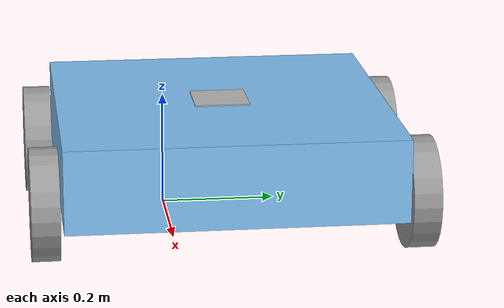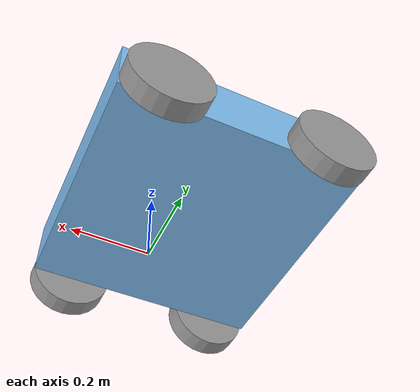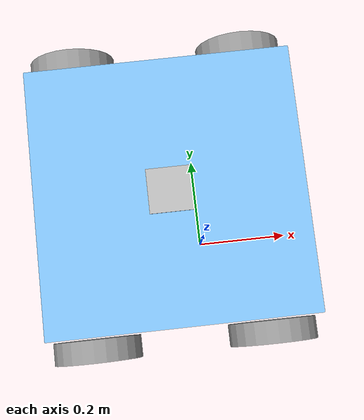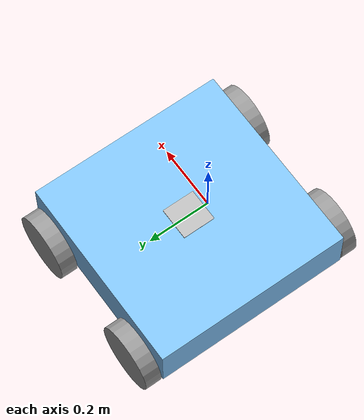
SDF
<?xml version='1.0'?>
<sdf version='1.6'>
  <model name='moving_platform'>
    <link name='base_link'>
      <inertial>
        <mass>5</mass>
        <inertia>
          <ixx>0.159375</ixx>
          <ixy>0</ixy>
          <ixz>0</ixz>
          <iyy>0.159375</iyy>
          <iyz>0</iyz>
          <izz>0.3</izz>
        </inertia>
        <pose frame=''>0 0 0 0 -0 0</pose>
      </inertial>
      <pose frame=''>-0.06079 0.110542 0.097222 0 -0 0</pose>
      <gravity>1</gravity>
      <self_collide>0</self_collide>
      <kinematic>0</kinematic>
      <enable_wind>0</enable_wind>
      <visual name='visual'>
        <pose frame=''>0 0 0 0 -0 0</pose>
        <geometry>
          <box>
            <size>0.6 0.6 0.15</size>
          </box>
        </geometry>
        <material>
          <lighting>1</lighting>
          <script>
            <uri>file://media/materials/scripts/gazebo.material</uri>
            <name>Gazebo/SkyBlue</name>
          </script>
          <shader type='pixel'>
            <normal_map>__default__</normal_map>
          </shader>
          <ambient>0.3 0.3 0.3 1</ambient>
          <diffuse>0.7 0.7 0.7 1</diffuse>
          <specular>0.01 0.01 0.01 1</specular>
          <emissive>0 0 0 1</emissive>
        </material>
        <transparency>0</transparency>
        <cast_shadows>1</cast_shadows>
      </visual>
      <collision name='collision'>
        <laser_retro>0</laser_retro>
        <max_contacts>10</max_contacts>
        <pose frame=''>0 0 0 0 -0 0</pose>
        <geometry>
          <box>
            <size>0.6 0.6 0.15</size>
          </box>
        </geometry>
        <surface>
          <friction>
            <ode>
              <mu>1</mu>
              <mu2>1</mu2>
              <fdir1>0 0 0</fdir1>
              <slip1>0</slip1>
              <slip2>0</slip2>
            </ode>
            <torsional>
              <coefficient>1</coefficient>
              <patch_radius>0</patch_radius>
              <surface_radius>0</surface_radius>
              <use_patch_radius>1</use_patch_radius>
              <ode>
                <slip>0</slip>
              </ode>
            </torsional>
          </friction>
          <bounce>
            <restitution_coefficient>0</restitution_coefficient>
            <threshold>1e+06</threshold>
          </bounce>
          <contact>
            <collide_without_contact>0</collide_without_contact>
            <collide_without_contact_bitmask>1</collide_without_contact_bitmask>
            <collide_bitmask>1</collide_bitmask>
            <ode>
              <soft_cfm>0</soft_cfm>
              <soft_erp>0.2</soft_erp>
              <kp>1e+13</kp>
              <kd>1</kd>
              <max_vel>0.01</max_vel>
              <min_depth>0</min_depth>
            </ode>
            <bullet>
              <split_impulse>1</split_impulse>
              <split_impulse_penetration_threshold>-0.01</split_impulse_penetration_threshold>
              <soft_cfm>0</soft_cfm>
              <soft_erp>0.2</soft_erp>
              <kp>1e+13</kp>
              <kd>1</kd>
            </bullet>
          </contact>
        </surface>
      </collision>
    </link>
    <link name='left_front_wheel'>
      <inertial>
        <mass>0.15</mass>
        <inertia>
          <ixx>0.00040625</ixx>
          <ixy>0</ixy>
          <ixz>0</ixz>
          <iyy>0.00040625</iyy>
          <iyz>0</iyz>
          <izz>0.00075</izz>
        </inertia>
        <pose frame=''>0 0 0 0 -0 0</pose>
      </inertial>
      <pose frame=''>0.13921 0.440542 0.047222 -1.5708 -0 -0</pose>
      <gravity>1</gravity>
      <self_collide>0</self_collide>
      <kinematic>0</kinematic>
      <enable_wind>0</enable_wind>
      <visual name='visual'>
        <pose frame=''>0 0 0 0 -0 0</pose>
        <geometry>
          <cylinder>
            <radius>0.1</radius>
            <length>0.05</length>
          </cylinder>
        </geometry>
        <material>
          <lighting>1</lighting>
          <script>
            <uri>file://media/materials/scripts/gazebo.material</uri>
            <name>Gazebo/Grey</name>
          </script>
          <shader type='pixel'>
            <normal_map>__default__</normal_map>
          </shader>
          <ambient>0.3 0.3 0.3 1</ambient>
          <diffuse>0.7 0.7 0.7 1</diffuse>
          <specular>0.01 0.01 0.01 1</specular>
          <emissive>0 0 0 1</emissive>
        </material>
        <transparency>0</transparency>
        <cast_shadows>1</cast_shadows>
      </visual>
      <collision name='collision'>
        <laser_retro>0</laser_retro>
        <max_contacts>10</max_contacts>
        <pose frame=''>0 0 0 0 -0 0</pose>
        <geometry>
          <cylinder>
            <radius>0.1</radius>
            <length>0.05</length>
          </cylinder>
        </geometry>
        <surface>
          <friction>
            <ode>
              <mu>1</mu>
              <mu2>1</mu2>
              <fdir1>0 0 0</fdir1>
              <slip1>0</slip1>
              <slip2>0</slip2>
            </ode>
            <torsional>
              <coefficient>1</coefficient>
              <patch_radius>0</patch_radius>
              <surface_radius>0</surface_radius>
              <use_patch_radius>1</use_patch_radius>
              <ode>
                <slip>0</slip>
              </ode>
            </torsional>
          </friction>
          <bounce>
            <restitution_coefficient>0</restitution_coefficient>
            <threshold>1e+06</threshold>
          </bounce>
          <contact>
            <collide_without_contact>0</collide_without_contact>
            <collide_without_contact_bitmask>1</collide_without_contact_bitmask>
            <collide_bitmask>1</collide_bitmask>
            <ode>
              <soft_cfm>0</soft_cfm>
              <soft_erp>0.2</soft_erp>
              <kp>1e+13</kp>
              <kd>1</kd>
              <max_vel>0.01</max_vel>
              <min_depth>0</min_depth>
            </ode>
            <bullet>
              <split_impulse>1</split_impulse>
              <split_impulse_penetration_threshold>-0.01</split_impulse_penetration_threshold>
              <soft_cfm>0</soft_cfm>
              <soft_erp>0.2</soft_erp>
              <kp>1e+13</kp>
              <kd>1</kd>
            </bullet>
          </contact>
        </surface>
      </collision>
    </link>
    <link name='left_rear_wheel'>
      <inertial>
        <mass>0.15</mass>
        <inertia>
          <ixx>0.00040625</ixx>
          <ixy>0</ixy>
          <ixz>0</ixz>
          <iyy>0.00040625</iyy>
          <iyz>0</iyz>
          <izz>0.00075</izz>
        </inertia>
        <pose frame=''>0 0 0 0 -0 0</pose>
      </inertial>
      <pose frame=''>-0.26079 0.440542 0.047222 -1.5708 -0 -0</pose>
      <gravity>1</gravity>
      <self_collide>0</self_collide>
      <kinematic>0</kinematic>
      <enable_wind>0</enable_wind>
      <visual name='visual'>
        <pose frame=''>0 0 0 0 -0 0</pose>
        <geometry>
          <cylinder>
            <radius>0.1</radius>
            <length>0.05</length>
          </cylinder>
        </geometry>
        <material>
          <lighting>1</lighting>
          <script>
            <uri>file://media/materials/scripts/gazebo.material</uri>
            <name>Gazebo/Grey</name>
          </script>
          <shader type='pixel'>
            <normal_map>__default__</normal_map>
          </shader>
          <ambient>0.3 0.3 0.3 1</ambient>
          <diffuse>0.7 0.7 0.7 1</diffuse>
          <specular>0.01 0.01 0.01 1</specular>
          <emissive>0 0 0 1</emissive>
        </material>
        <transparency>0</transparency>
        <cast_shadows>1</cast_shadows>
      </visual>
      <collision name='collision'>
        <laser_retro>0</laser_retro>
        <max_contacts>10</max_contacts>
        <pose frame=''>0 0 0 0 -0 0</pose>
        <geometry>
          <cylinder>
            <radius>0.1</radius>
            <length>0.05</length>
          </cylinder>
        </geometry>
        <surface>
          <friction>
            <ode>
              <mu>1</mu>
              <mu2>1</mu2>
              <fdir1>0 0 0</fdir1>
              <slip1>0</slip1>
              <slip2>0</slip2>
            </ode>
            <torsional>
              <coefficient>1</coefficient>
              <patch_radius>0</patch_radius>
              <surface_radius>0</surface_radius>
              <use_patch_radius>1</use_patch_radius>
              <ode>
                <slip>0</slip>
              </ode>
            </torsional>
          </friction>
          <bounce>
            <restitution_coefficient>0</restitution_coefficient>
            <threshold>1e+06</threshold>
          </bounce>
          <contact>
            <collide_without_contact>0</collide_without_contact>
            <collide_without_contact_bitmask>1</collide_without_contact_bitmask>
            <collide_bitmask>1</collide_bitmask>
            <ode>
              <soft_cfm>0</soft_cfm>
              <soft_erp>0.2</soft_erp>
              <kp>1e+13</kp>
              <kd>1</kd>
              <max_vel>0.01</max_vel>
              <min_depth>0</min_depth>
            </ode>
            <bullet>
              <split_impulse>1</split_impulse>
              <split_impulse_penetration_threshold>-0.01</split_impulse_penetration_threshold>
              <soft_cfm>0</soft_cfm>
              <soft_erp>0.2</soft_erp>
              <kp>1e+13</kp>
              <kd>1</kd>
            </bullet>
          </contact>
        </surface>
      </collision>
    </link>
    <link name='right_front_wheel'>
      <inertial>
        <mass>0.15</mass>
        <inertia>
          <ixx>0.00040625</ixx>
          <ixy>0</ixy>
          <ixz>0</ixz>
          <iyy>0.00040625</iyy>
          <iyz>0</iyz>
          <izz>0.00075</izz>
        </inertia>
        <pose frame=''>0 0 0 0 -0 0</pose>
      </inertial>
      <pose frame=''>0.13921 -0.219458 0.047222 -1.5708 -0.000987 -0</pose>
      <gravity>1</gravity>
      <self_collide>0</self_collide>
      <kinematic>0</kinematic>
      <enable_wind>0</enable_wind>
      <visual name='visual'>
        <pose frame=''>0 0 0 0 -0 0</pose>
        <geometry>
          <cylinder>
            <radius>0.1</radius>
            <length>0.05</length>
          </cylinder>
        </geometry>
        <material>
          <lighting>1</lighting>
          <script>
            <uri>file://media/materials/scripts/gazebo.material</uri>
            <name>Gazebo/Grey</name>
          </script>
          <shader type='pixel'>
            <normal_map>__default__</normal_map>
          </shader>
          <ambient>0.3 0.3 0.3 1</ambient>
          <diffuse>0.7 0.7 0.7 1</diffuse>
          <specular>0.01 0.01 0.01 1</specular>
          <emissive>0 0 0 1</emissive>
        </material>
        <transparency>0</transparency>
        <cast_shadows>1</cast_shadows>
      </visual>
      <collision name='collision'>
        <laser_retro>0</laser_retro>
        <max_contacts>10</max_contacts>
        <pose frame=''>0 0 0 0 -0 0</pose>
        <geometry>
          <cylinder>
            <radius>0.1</radius>
            <length>0.05</length>
          </cylinder>
        </geometry>
        <surface>
          <friction>
            <ode>
              <mu>1</mu>
              <mu2>1</mu2>
              <fdir1>0 0 0</fdir1>
              <slip1>0</slip1>
              <slip2>0</slip2>
            </ode>
            <torsional>
              <coefficient>1</coefficient>
              <patch_radius>0</patch_radius>
              <surface_radius>0</surface_radius>
              <use_patch_radius>1</use_patch_radius>
              <ode>
                <slip>0</slip>
              </ode>
            </torsional>
          </friction>
          <bounce>
            <restitution_coefficient>0</restitution_coefficient>
            <threshold>1e+06</threshold>
          </bounce>
          <contact>
            <collide_without_contact>0</collide_without_contact>
            <collide_without_contact_bitmask>1</collide_without_contact_bitmask>
            <collide_bitmask>1</collide_bitmask>
            <ode>
              <soft_cfm>0</soft_cfm>
              <soft_erp>0.2</soft_erp>
              <kp>1e+13</kp>
              <kd>1</kd>
              <max_vel>0.01</max_vel>
              <min_depth>0</min_depth>
            </ode>
            <bullet>
              <split_impulse>1</split_impulse>
              <split_impulse_penetration_threshold>-0.01</split_impulse_penetration_threshold>
              <soft_cfm>0</soft_cfm>
              <soft_erp>0.2</soft_erp>
              <kp>1e+13</kp>
              <kd>1</kd>
            </bullet>
          </contact>
        </surface>
      </collision>
    </link>
    <link name='right_rear_wheel'>
      <inertial>
        <mass>0.15</mass>
        <inertia>
          <ixx>0.00040625</ixx>
          <ixy>0</ixy>
          <ixz>0</ixz>
          <iyy>0.00040625</iyy>
          <iyz>0</iyz>
          <izz>0.00075</izz>
        </inertia>
        <pose frame=''>0 0 0 0 -0 0</pose>
      </inertial>
      <pose frame=''>-0.26079 -0.219458 0.047222 -1.5708 -0 -0</pose>
      <gravity>1</gravity>
      <self_collide>0</self_collide>
      <kinematic>0</kinematic>
      <enable_wind>0</enable_wind>
      <visual name='visual'>
        <pose frame=''>0 0 0 0 -0 0</pose>
        <geometry>
          <cylinder>
            <radius>0.1</radius>
            <length>0.05</length>
          </cylinder>
        </geometry>
        <material>
          <lighting>1</lighting>
          <script>
            <uri>file://media/materials/scripts/gazebo.material</uri>
            <name>Gazebo/Grey</name>
          </script>
          <shader type='pixel'>
            <normal_map>__default__</normal_map>
          </shader>
          <ambient>0.3 0.3 0.3 1</ambient>
          <diffuse>0.7 0.7 0.7 1</diffuse>
          <specular>0.01 0.01 0.01 1</specular>
          <emissive>0 0 0 1</emissive>
        </material>
        <transparency>0</transparency>
        <cast_shadows>1</cast_shadows>
      </visual>
      <collision name='collision'>
        <laser_retro>0</laser_retro>
        <max_contacts>10</max_contacts>
        <pose frame=''>0 0 0 0 -0 0</pose>
        <geometry>
          <cylinder>
            <radius>0.1</radius>
            <length>0.05</length>
          </cylinder>
        </geometry>
        <surface>
          <friction>
            <ode>
              <mu>1</mu>
              <mu2>1</mu2>
              <fdir1>0 0 0</fdir1>
              <slip1>0</slip1>
              <slip2>0</slip2>
            </ode>
            <torsional>
              <coefficient>1</coefficient>
              <patch_radius>0</patch_radius>
              <surface_radius>0</surface_radius>
              <use_patch_radius>1</use_patch_radius>
              <ode>
                <slip>0</slip>
              </ode>
            </torsional>
          </friction>
          <bounce>
            <restitution_coefficient>0</restitution_coefficient>
            <threshold>1e+06</threshold>
          </bounce>
          <contact>
            <collide_without_contact>0</collide_without_contact>
            <collide_without_contact_bitmask>1</collide_without_contact_bitmask>
            <collide_bitmask>1</collide_bitmask>
            <ode>
              <soft_cfm>0</soft_cfm>
              <soft_erp>0.2</soft_erp>
              <kp>1e+13</kp>
              <kd>1</kd>
              <max_vel>0.01</max_vel>
              <min_depth>0</min_depth>
            </ode>
            <bullet>
              <split_impulse>1</split_impulse>
              <split_impulse_penetration_threshold>-0.01</split_impulse_penetration_threshold>
              <soft_cfm>0</soft_cfm>
              <soft_erp>0.2</soft_erp>
              <kp>1e+13</kp>
              <kd>1</kd>
            </bullet>
          </contact>
        </surface>
      </collision>
    </link>
    <model name='camera_0'>
      <pose frame=''>-0.060656 0.110538 0.124572 8e-06 -1.56986 -8e-06</pose>
      <link name='link'>
        <inertial>
          <mass>0.01</mass>
          <inertia>
            <ixx>1.66667e-05</ixx>
            <iyy>1.66667e-05</iyy>
            <izz>1.66667e-05</izz>
            <ixy>0</ixy>
            <ixz>0</ixz>
            <iyz>0</iyz>
          </inertia>
          <pose frame=''>0 0 0 0 -0 0</pose>
        </inertial>
        <collision name='collision'>
          <geometry>
            <box>
              <size>0.1 0.1 0.1</size>
            </box>
          </geometry>
          <max_contacts>10</max_contacts>
          <surface>
            <contact>
              <ode/>
            </contact>
            <bounce/>
            <friction>
              <torsional>
                <ode/>
              </torsional>
              <ode/>
            </friction>
          </surface>
        </collision>
        <visual name='visual'>
          <geometry>
            <box>
              <size>0.1 0.1 0.1</size>
            </box>
          </geometry>
        </visual>
        <sensor name='camera' type='camera'>
          <camera name='__default__'>
            <horizontal_fov>1.047</horizontal_fov>
            <image>
              <width>640</width>
              <height>480</height>
            </image>
            <clip>
              <near>0.1</near>
              <far>100</far>
            </clip>
          </camera>
          <always_on>1</always_on>
          <update_rate>100.0</update_rate>
          <visualize>1</visualize>
          <plugin name='camera_plugin' filename='libgazebo_ros_camera.so'>
            <robotNamespace>/moving_platform/sensor</robotNamespace>
            <alwaysOn>1</alwaysOn>
            <imageTopicName>image_raw</imageTopicName>
            <cameraInfoTopicName>camera_info</cameraInfoTopicName>
            <updateRate>100.0</updateRate>
            <cameraName>camera_lookup</cameraName>
            <frameName>/camera_0::link</frameName>
            <hackBaseline>0</hackBaseline>
            <distortionK1>0.0</distortionK1>
            <distortionK2>0.0</distortionK2>
            <distortionK3>0.0</distortionK3>
            <distortionT1>0.0</distortionT1>
            <distortionT2>0.0</distortionT2>
          </plugin>
        </sensor>
        <self_collide>0</self_collide>
        <enable_wind>0</enable_wind>
        <kinematic>0</kinematic>
      </link>
    </model>
    <joint name='camera_joint' type='fixed'>
      <parent>base_link</parent>
      <child>camera_0::link</child>
      <pose frame=''>0 0 0 0 -0 0</pose>
      <physics>
        <ode>
          <limit>
            <cfm>0</cfm>
            <erp>0.2</erp>
          </limit>
          <suspension>
            <cfm>0</cfm>
            <erp>0.2</erp>
          </suspension>
        </ode>
      </physics>
    </joint>
    <joint name='left_front_wheel_joint' type='revolute'>
      <parent>base_link</parent>
      <child>left_front_wheel</child>
      <pose frame=''>0 0 0 0 -0 0</pose>
      <axis>
        <xyz>0 0 1</xyz>
        <use_parent_model_frame>0</use_parent_model_frame>
        <limit>
          <lower>-1.79769e+308</lower>
          <upper>1.79769e+308</upper>
          <effort>-1</effort>
          <velocity>-1</velocity>
        </limit>
        <dynamics>
          <spring_reference>0</spring_reference>
          <spring_stiffness>0</spring_stiffness>
          <damping>0</damping>
          <friction>0</friction>
        </dynamics>
      </axis>
      <physics>
        <ode>
          <limit>
            <cfm>0</cfm>
            <erp>0.2</erp>
          </limit>
          <suspension>
            <cfm>0</cfm>
            <erp>0.2</erp>
          </suspension>
        </ode>
      </physics>
    </joint>
    <joint name='left_rear_wheel_joint' type='revolute'>
      <parent>base_link</parent>
      <child>left_rear_wheel</child>
      <pose frame=''>0 0 0 0 -0 0</pose>
      <axis>
        <xyz>0 0 1</xyz>
        <use_parent_model_frame>0</use_parent_model_frame>
        <limit>
          <lower>-1.79769e+308</lower>
          <upper>1.79769e+308</upper>
          <effort>-1</effort>
          <velocity>-1</velocity>
        </limit>
        <dynamics>
          <spring_reference>0</spring_reference>
          <spring_stiffness>0</spring_stiffness>
          <damping>0</damping>
          <friction>0</friction>
        </dynamics>
      </axis>
      <physics>
        <ode>
          <limit>
            <cfm>0</cfm>
            <erp>0.2</erp>
          </limit>
          <suspension>
            <cfm>0</cfm>
            <erp>0.2</erp>
          </suspension>
        </ode>
      </physics>
    </joint>
    <joint name='right_front_wheel_joint' type='revolute'>
      <parent>base_link</parent>
      <child>right_front_wheel</child>
      <pose frame=''>0 0 0 0 -0 0</pose>
      <axis>
        <xyz>0 0 1</xyz>
        <use_parent_model_frame>0</use_parent_model_frame>
        <limit>
          <lower>-1.79769e+308</lower>
          <upper>1.79769e+308</upper>
          <effort>-1</effort>
          <velocity>-1</velocity>
        </limit>
        <dynamics>
          <spring_reference>0</spring_reference>
          <spring_stiffness>0</spring_stiffness>
          <damping>0</damping>
          <friction>0</friction>
        </dynamics>
      </axis>
      <physics>
        <ode>
          <limit>
            <cfm>0</cfm>
            <erp>0.2</erp>
          </limit>
          <suspension>
            <cfm>0</cfm>
            <erp>0.2</erp>
          </suspension>
        </ode>
      </physics>
    </joint>
    <joint name='right_rear_wheel_joint' type='revolute'>
      <parent>base_link</parent>
      <child>right_rear_wheel</child>
      <pose frame=''>0 0 0 0 -0 0</pose>
      <axis>
        <xyz>0 0 1</xyz>
        <use_parent_model_frame>0</use_parent_model_frame>
        <limit>
          <lower>-1.79769e+308</lower>
          <upper>1.79769e+308</upper>
          <effort>-1</effort>
          <velocity>-1</velocity>
        </limit>
        <dynamics>
          <spring_reference>0</spring_reference>
          <spring_stiffness>0</spring_stiffness>
          <damping>0</damping>
          <friction>0</friction>
        </dynamics>
      </axis>
      <physics>
        <ode>
          <limit>
            <cfm>0</cfm>
            <erp>0.2</erp>
          </limit>
          <suspension>
            <cfm>0</cfm>
            <erp>0.2</erp>
          </suspension>
        </ode>
      </physics>
    </joint>
    <static>0</static>
    <allow_auto_disable>1</allow_auto_disable>
    <plugin name="wheel_controller" filename="libgazebo_ros_planar_move.so">
    <updateRate>100.0</updateRate>
    <robotNamespace>/moving_platform/wheelcontrol</robotNamespace>
    <leftFrontJoint>left_front_wheel_joint</leftFrontJoint>
    <rightFrontJoint>right_front_wheel_joint</rightFrontJoint>
    <leftRearJoint>left_rear_wheel_joint</leftRearJoint>
    <rightRearJoint>right_rear_wheel_joint</rightRearJoint>
    <wheelSeparation>4</wheelSeparation>
    <wheelDiameter>0.2</wheelDiameter>
    <robotBaseFrame>base_link</robotBaseFrame>
    <torque>1</torque>
    <topicName>cmd_vel</topicName>
    <broadcastTF>0</broadcastTF>
    <odometryTopic>odom</odometryTopic>
    <odometryFrame>odom</odometryFrame>
	<odometryRate>100.0</odometryRate>
    </plugin>
  </model>
</sdf>
